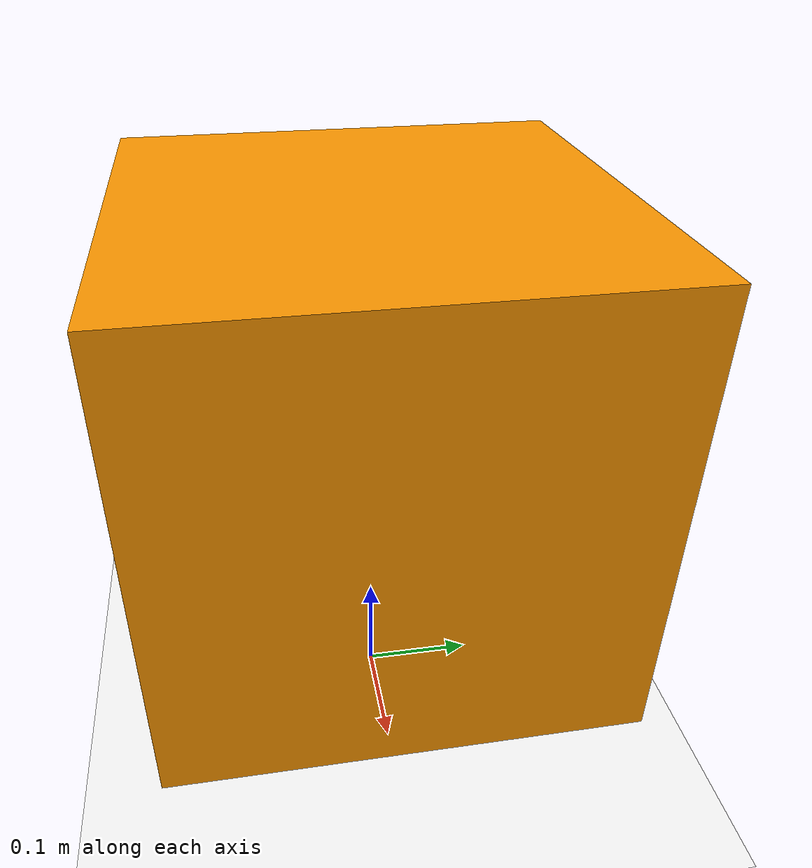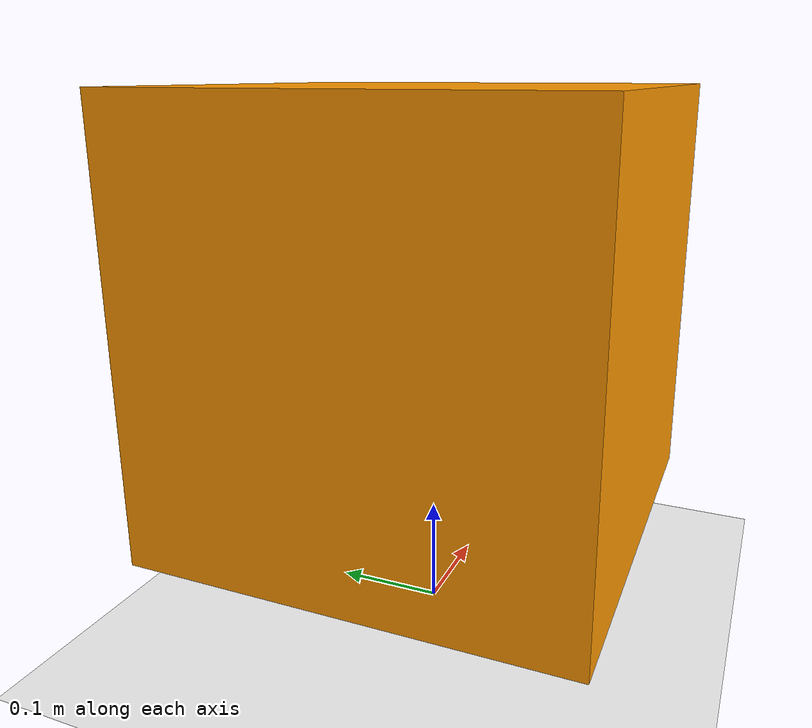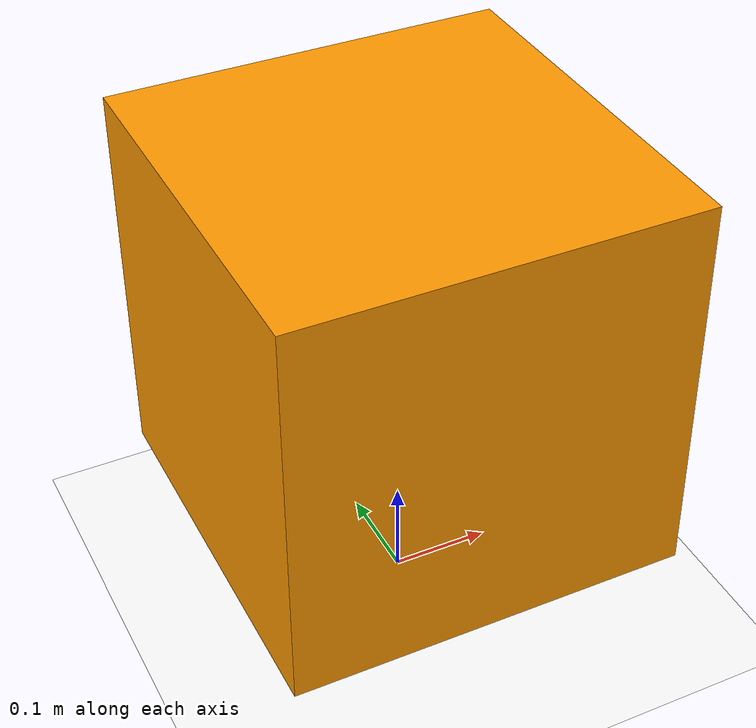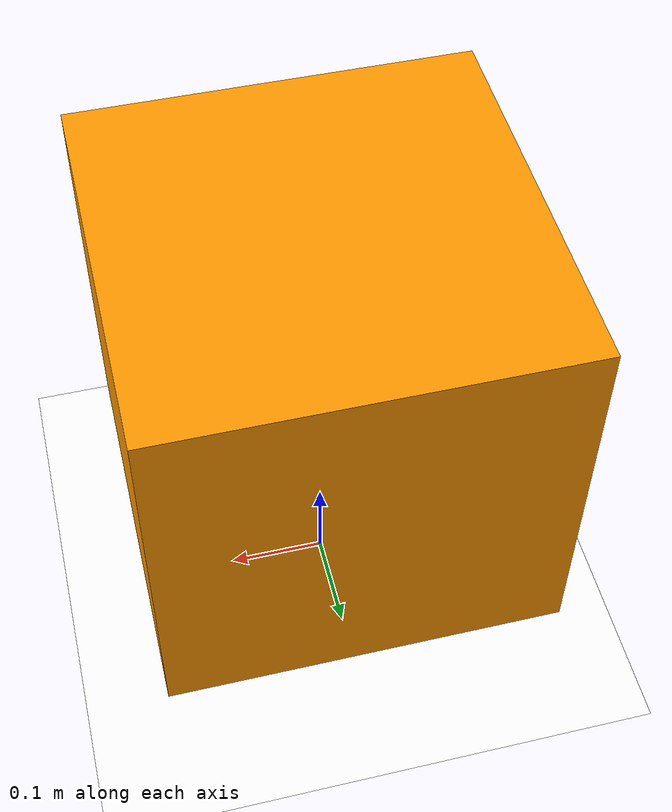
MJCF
<mujoco model="resizable_box">
  <!-- keep tiny lower bounds to avoid NaNs if anything ends up ~0 -->
  <compiler inertiafromgeom="false" boundmass="1e-6" boundinertia="1e-8"/>
  <option timestep="0.002" gravity="0 0 0"/>

  <worldbody>
    <geom name="floor" type="plane" size="5 5 0.1" rgba="1 1 1 0.5"/>

    <!-- The actual box (we’ll set its inertia every step in Python) -->
    <body name="box" pos="0 0 0.3">
      <freejoint/>
      <inertial mass="1.0" diaginertia="0.01 0.01 0.01" pos="0 0 0"/>
      <geom name="gbox" type="box" size="0.20 0.20 0.20" rgba="1 0.6 0 1"/>

      <!-- Dummy joints whose qpos are the half-extents (ux, uy, uz) -->
      <body name="knobs">
        <!-- tiny inertial so this moving body is not massless -->
        <inertial mass="1e-6" diaginertia="1e-8 1e-8 1e-8" pos="0 0 0"/>
        <joint name="ux_joint" type="slide" axis="1 0 0" range="0 1.0" damping="20"/>
        <joint name="uy_joint" type="slide" axis="0 1 0" range="0 1.0" damping="20"/>
        <joint name="uz_joint" type="slide" axis="0 0 1" range="0 1.0" damping="20"/>
      </body>
    </body>
  </worldbody>

  <actuator>
    <position name="ux" joint="ux_joint" kp="300" ctrllimited="true" ctrlrange="0 1.0"/>
    <position name="uy" joint="uy_joint" kp="300" ctrllimited="true" ctrlrange="0 1.0"/>
    <position name="uz" joint="uz_joint" kp="300" ctrllimited="true" ctrlrange="0 1.0"/>
  </actuator>
</mujoco>
